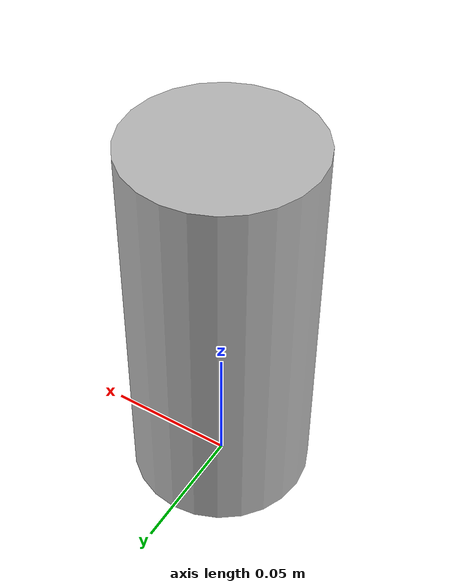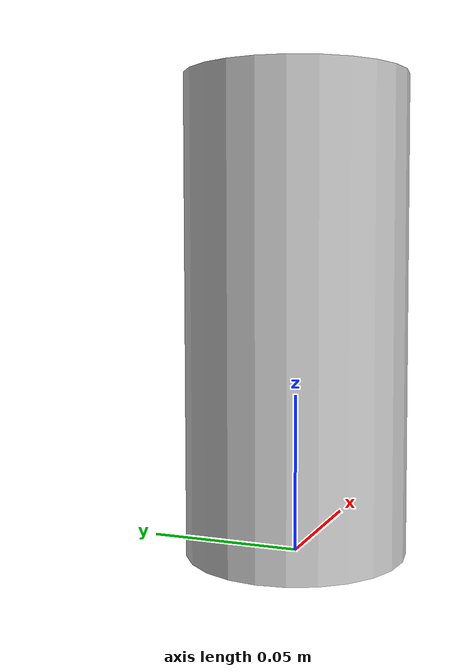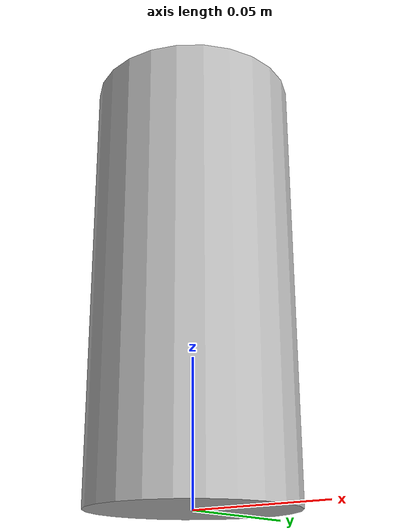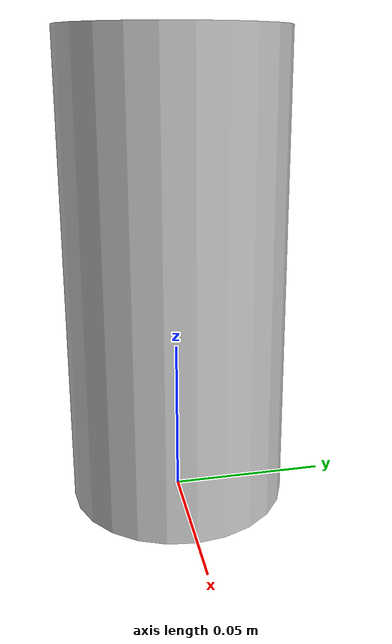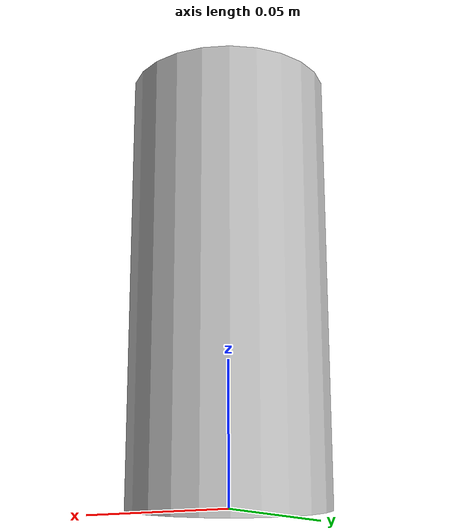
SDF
<?xml version="1.0" ?>
<sdf version="1.5">
  <model name="beer">
    <link name="link">
      <pose>0 0 0.075 0 0 0</pose>
      <inertial>
        <mass>0.390</mass>
        <inertia>
          <ixx>0.00058</ixx>
          <ixy>0</ixy>
          <ixz>0</ixz>
          <iyy>0.00058</iyy>
          <iyz>0</iyz>
          <izz>0.00019</izz>
        </inertia>
      </inertial>
      <collision name="collision">
        <geometry>
          <cylinder>
            <radius>0.035000</radius>
            <length>0.150000</length>
          </cylinder>
        </geometry>
        <surface>
          <friction>
            <ode>
              <mu>500.000000</mu>
              <mu2>500.000000</mu2>
              <fdir1>0.000000 0.000000 0.000000</fdir1>
              <slip1>0.000000</slip1>
              <slip2>0.000000</slip2>
            </ode>
          </friction>
          <bounce>
            <restitution_coefficient>0.000000</restitution_coefficient>
            <threshold>100000.000000</threshold>
          </bounce>
          <contact>
            <ode>
              <soft_cfm>0.000000</soft_cfm>
              <soft_erp>0.200000</soft_erp>
              <kp>10000000.000000</kp>
              <kd>1.000000</kd>
              <max_vel>0.000000</max_vel>
              <min_depth>0.001000</min_depth>
            </ode>
          </contact>
        </surface>
      </collision>
      <visual name="visual">
        <geometry>
          <cylinder>
            <radius>0.035000</radius>
            <length>0.150000</length>
          </cylinder>
        </geometry>
        <material>
          <script>
            <uri>model://beer/materials/scripts</uri>
            <uri>model://beer/materials/textures</uri>
            <name>Beer/Diffuse</name>
          </script>
        </material>
      </visual>
    </link>
  </model>
</sdf>
